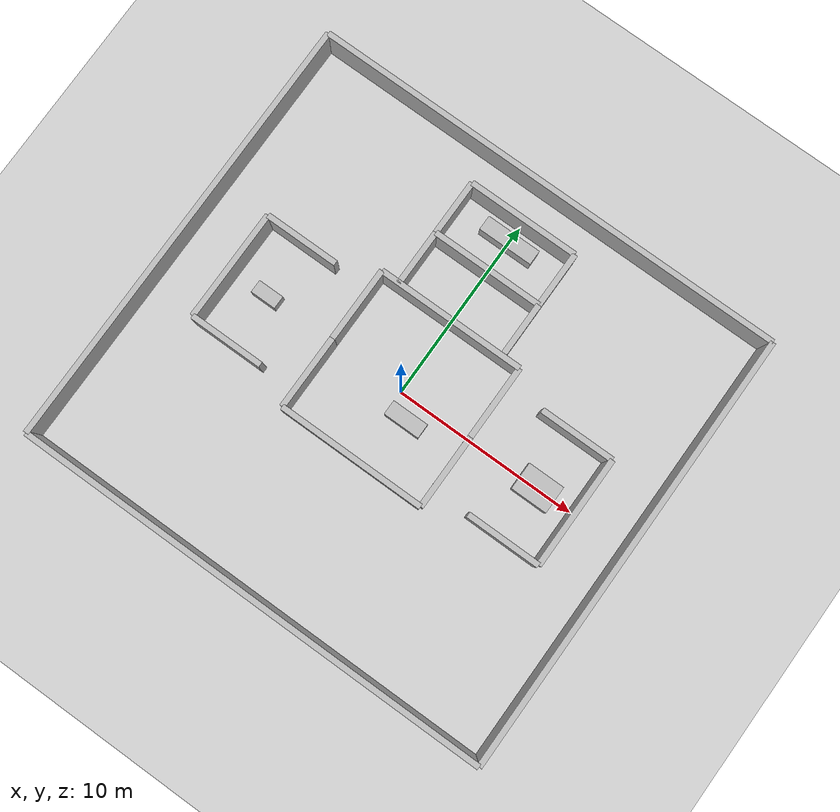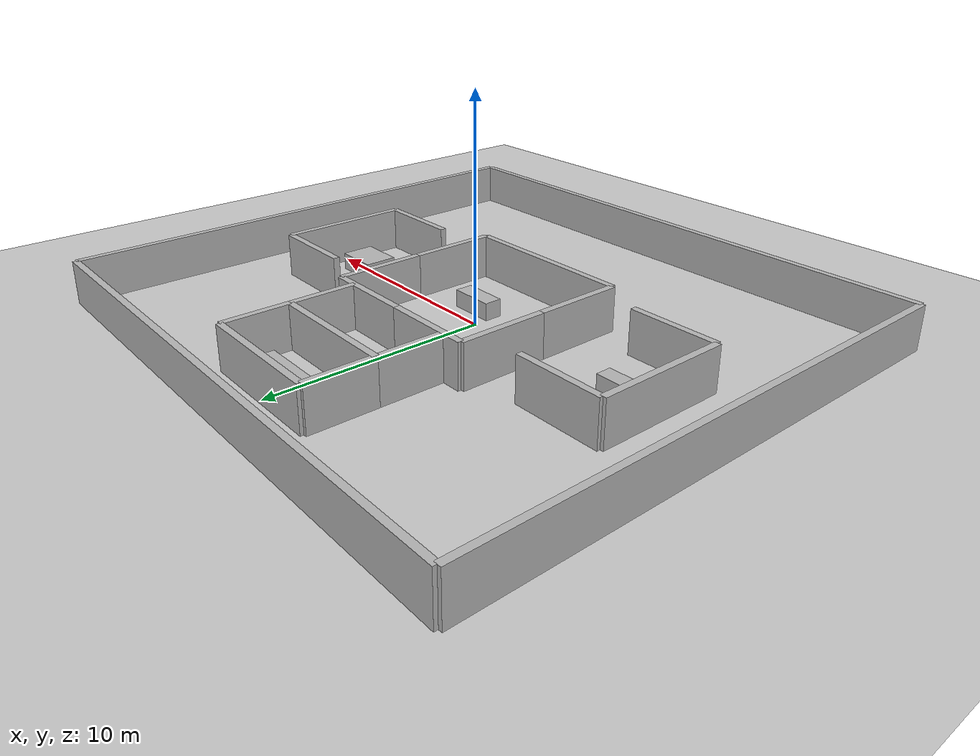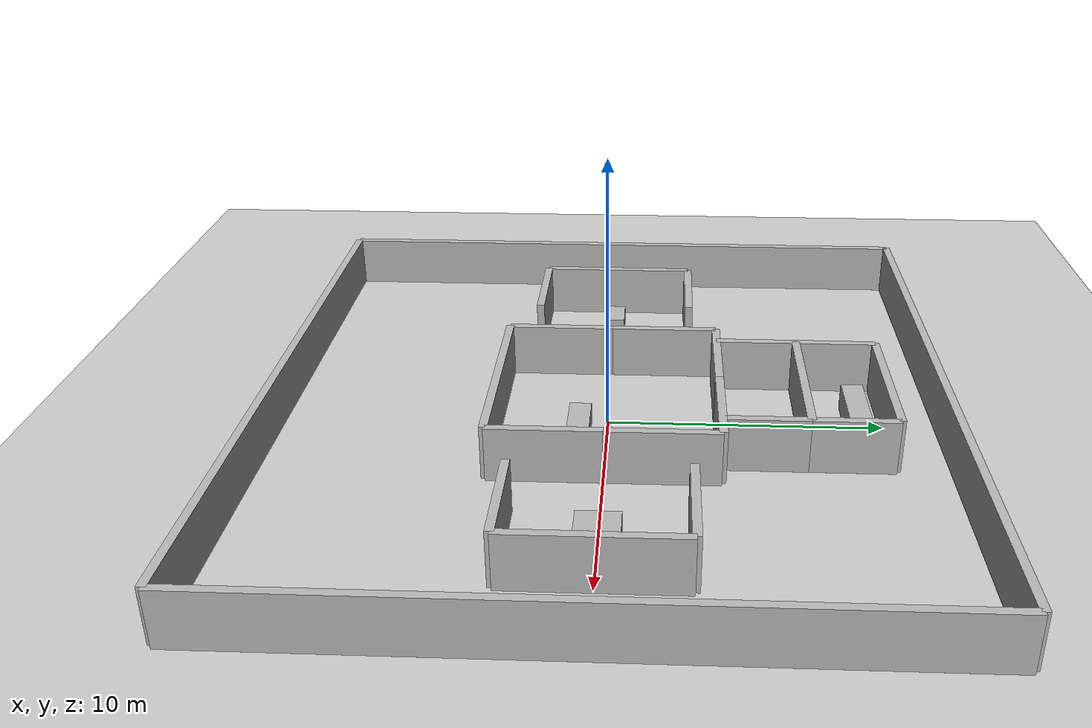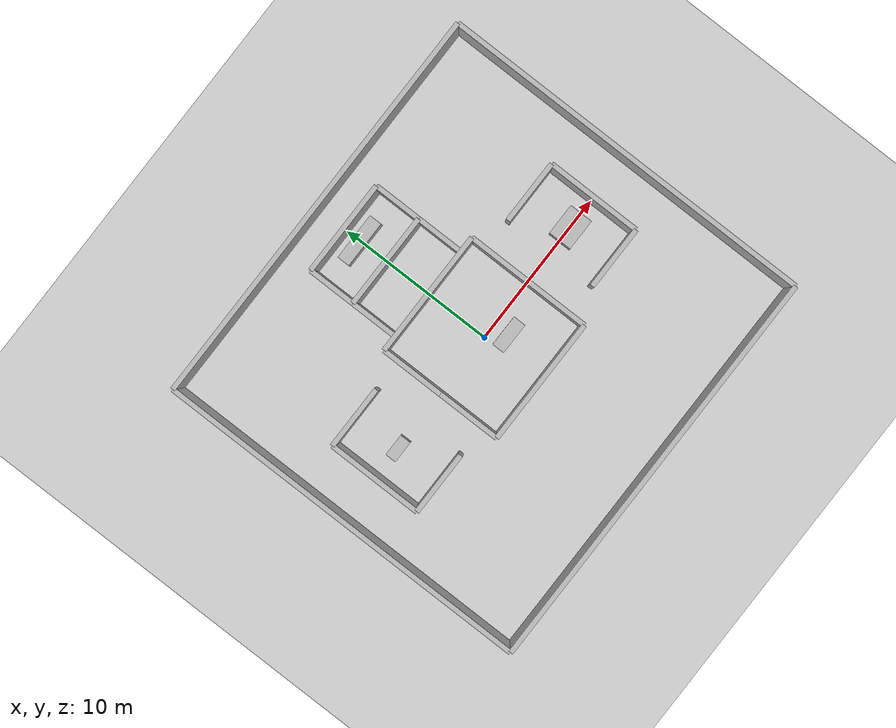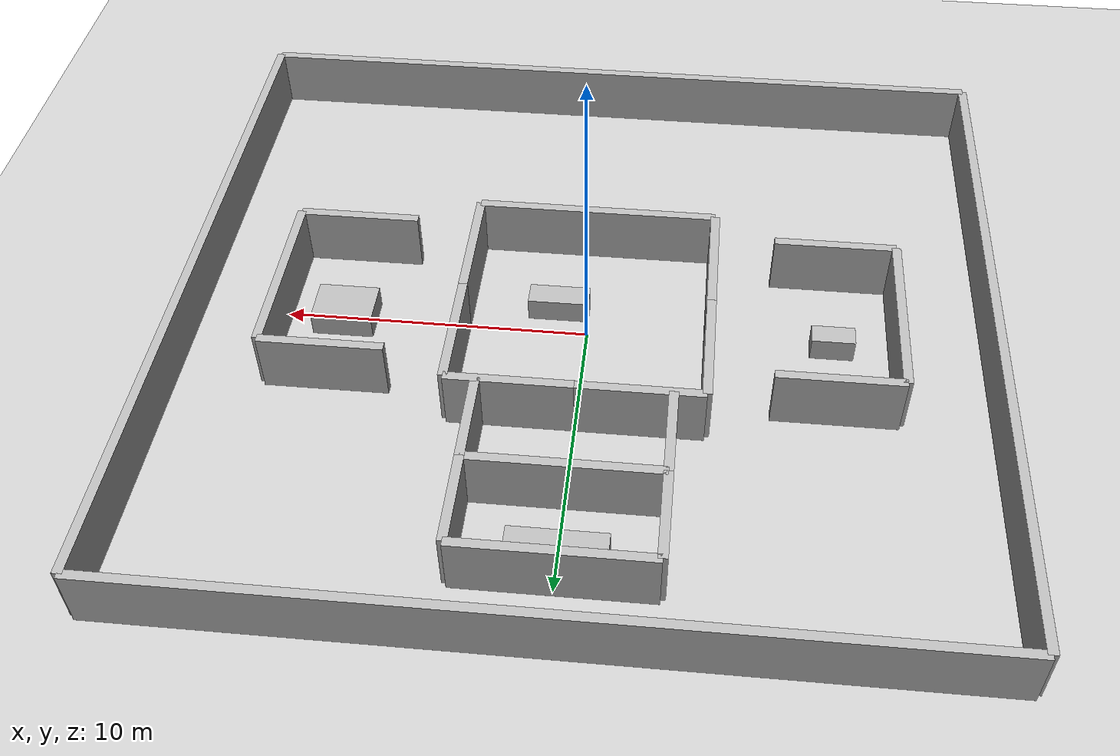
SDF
<sdf version="1.6">
<world name="realistic_house">

<include><uri>model://ground_plane</uri></include>
<include><uri>model://sun</uri></include>

<!-- ================= 外壳 ================= -->
<model name="outer"><static>true</static>

<link name="n"><pose>0 12 1 0 0 0</pose>
<collision name="c"><geometry><box><size>26 0.3 2</size></box></geometry></collision>
<visual name="v"><geometry><box><size>26 0.3 2</size></box></geometry></visual>
</link>

<link name="s"><pose>0 -12 1 0 0 0</pose>
<collision name="c"><geometry><box><size>26 0.3 2</size></box></geometry></collision>
<visual name="v"><geometry><box><size>26 0.3 2</size></box></geometry></visual>
</link>

<link name="w"><pose>-13 0 1 0 0 0</pose>
<collision name="c"><geometry><box><size>0.3 24 2</size></box></geometry></collision>
<visual name="v"><geometry><box><size>0.3 24 2</size></box></geometry></visual>
</link>

<link name="e"><pose>13 0 1 0 0 0</pose>
<collision name="c"><geometry><box><size>0.3 24 2</size></box></geometry></collision>
<visual name="v"><geometry><box><size>0.3 24 2</size></box></geometry></visual>
</link>

</model>

<!-- ================= 客厅（出生区） ================= -->
<!-- 中央8x8空间完全开放 -->

<!-- 北墙带门洞通走廊 -->
<model name="living_north"><static>true</static>
<link name="l"><pose>-2 4 1 0 0 0</pose>
<collision name="c"><geometry><box><size>4 0.3 2</size></box></geometry></collision>
<visual name="v"><geometry><box><size>4 0.3 2</size></box></geometry></visual>
</link>
<link name="r"><pose>2 4 1 0 0 0</pose>
<collision name="c"><geometry><box><size>4 0.3 2</size></box></geometry></collision>
<visual name="v"><geometry><box><size>4 0.3 2</size></box></geometry></visual>
</link>
</model>

<!-- 南墙 -->
<model name="living_south"><static>true</static>
<link name="w"><pose>0 -4 1 0 0 0</pose>
<collision name="c"><geometry><box><size>8 0.3 2</size></box></geometry></collision>
<visual name="v"><geometry><box><size>8 0.3 2</size></box></geometry></visual>
</link>
</model>

<!-- 东墙门洞通卧室1 -->
<model name="living_east"><static>true</static>
<link name="t"><pose>4 2 1 0 0 1.57</pose>
<collision name="c"><geometry><box><size>4 0.3 2</size></box></geometry></collision>
<visual name="v"><geometry><box><size>4 0.3 2</size></box></geometry></visual>
</link>
<link name="b"><pose>4 -2 1 0 0 1.57</pose>
<collision name="c"><geometry><box><size>4 0.3 2</size></box></geometry></collision>
<visual name="v"><geometry><box><size>4 0.3 2</size></box></geometry></visual>
</link>
</model>

<!-- 西墙门洞通卧室2 -->
<model name="living_west"><static>true</static>
<link name="t"><pose>-4 2 1 0 0 1.57</pose>
<collision name="c"><geometry><box><size>4 0.3 2</size></box></geometry></collision>
<visual name="v"><geometry><box><size>4 0.3 2</size></box></geometry></visual>
</link>
<link name="b"><pose>-4 -2 1 0 0 1.57</pose>
<collision name="c"><geometry><box><size>4 0.3 2</size></box></geometry></collision>
<visual name="v"><geometry><box><size>4 0.3 2</size></box></geometry></visual>
</link>
</model>

<!-- 家具 -->
<model name="sofa"><static>true</static>
<pose>1 -1 0.4 0 0 0</pose>
<link name="l"><collision name="c"><geometry><box><size>2 0.8 0.8</size></box></geometry></collision>
<visual name="v"><geometry><box><size>2 0.8 0.8</size></box></geometry></visual></link>
</model>

<!-- ================= 走廊 ================= -->
<model name="hall"><static>true</static>

<link name="n"><pose>0 7 1 0 0 0</pose>
<collision name="c"><geometry><box><size>6 0.3 2</size></box></geometry></collision>
<visual name="v"><geometry><box><size>6 0.3 2</size></box></geometry></visual>
</link>

<link name="e"><pose>3 5.5 1 0 0 1.57</pose>
<collision name="c"><geometry><box><size>3 0.3 2</size></box></geometry></collision>
<visual name="v"><geometry><box><size>3 0.3 2</size></box></geometry></visual>
</link>

<link name="w"><pose>-3 5.5 1 0 0 1.57</pose>
<collision name="c"><geometry><box><size>3 0.3 2</size></box></geometry></collision>
<visual name="v"><geometry><box><size>3 0.3 2</size></box></geometry></visual>
</link>

</model>

<!-- ================= 厨房（完整4墙+门洞） ================= -->
<model name="kitchen"><static>true</static>

<link name="north"><pose>0 10 1 0 0 0</pose>
<collision name="c"><geometry><box><size>6 0.3 2</size></box></geometry></collision>
<visual name="v"><geometry><box><size>6 0.3 2</size></box></geometry></visual>
</link>

<link name="east"><pose>3 8.5 1 0 0 1.57</pose>
<collision name="c"><geometry><box><size>3 0.3 2</size></box></geometry></collision>
<visual name="v"><geometry><box><size>3 0.3 2</size></box></geometry></visual>
</link>

<link name="west"><pose>-3 8.5 1 0 0 1.57</pose>
<collision name="c"><geometry><box><size>3 0.3 2</size></box></geometry></collision>
<visual name="v"><geometry><box><size>3 0.3 2</size></box></geometry></visual>
</link>

</model>

<model name="kitchen_counter"><static>true</static>
<pose>0 9 0.5 0 0 0</pose>
<link name="l"><collision name="c"><geometry><box><size>3 0.8 1</size></box></geometry></collision>
<visual name="v"><geometry><box><size>3 0.8 1</size></box></geometry></visual></link>
</model>

<!-- ================= 卧室1 ================= -->
<model name="bedroom1"><static>true</static>

<link name="north"><pose>8 3 1 0 0 0</pose>
<collision name="c"><geometry><box><size>4 0.3 2</size></box></geometry></collision>
<visual name="v"><geometry><box><size>4 0.3 2</size></box></geometry></visual>
</link>

<link name="south"><pose>8 -3 1 0 0 0</pose>
<collision name="c"><geometry><box><size>4 0.3 2</size></box></geometry></collision>
<visual name="v"><geometry><box><size>4 0.3 2</size></box></geometry></visual>
</link>

<link name="east"><pose>10 0 1 0 0 1.57</pose>
<collision name="c"><geometry><box><size>6 0.3 2</size></box></geometry></collision>
<visual name="v"><geometry><box><size>6 0.3 2</size></box></geometry></visual>
</link>

</model>

<model name="bed1"><static>true</static>
<pose>8 0 0.4 0 0 0</pose>
<link name="l"><collision name="c"><geometry><box><size>2 1.5 0.8</size></box></geometry></collision>
<visual name="v"><geometry><box><size>2 1.5 0.8</size></box></geometry></visual></link>
</model>

<!-- ================= 卧室2 ================= -->
<model name="bedroom2"><static>true</static>

<link name="north"><pose>-8 3 1 0 0 0</pose>
<collision name="c"><geometry><box><size>4 0.3 2</size></box></geometry></collision>
<visual name="v"><geometry><box><size>4 0.3 2</size></box></geometry></visual>
</link>

<link name="south"><pose>-8 -3 1 0 0 0</pose>
<collision name="c"><geometry><box><size>4 0.3 2</size></box></geometry></collision>
<visual name="v"><geometry><box><size>4 0.3 2</size></box></geometry></visual>
</link>

<link name="west"><pose>-10 0 1 0 0 1.57</pose>
<collision name="c"><geometry><box><size>6 0.3 2</size></box></geometry></collision>
<visual name="v"><geometry><box><size>6 0.3 2</size></box></geometry></visual>
</link>

</model>

<model name="desk2"><static>true</static>
<pose>-8 0 0.4 0 0 0</pose>
<link name="l"><collision name="c"><geometry><box><size>1.4 0.7 0.8</size></box></geometry></collision>
<visual name="v"><geometry><box><size>1.4 0.7 0.8</size></box></geometry></visual></link>
</model>

</world>
</sdf>
